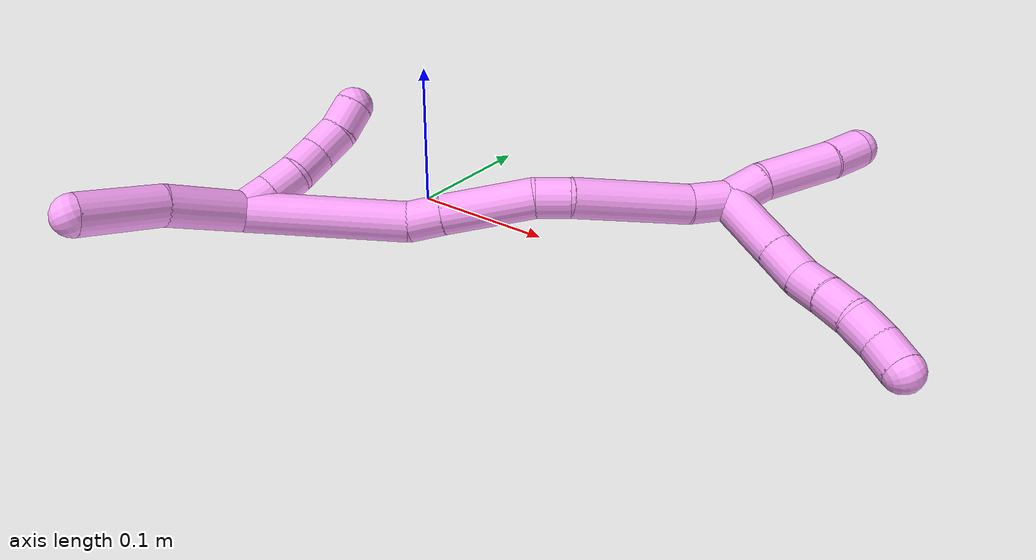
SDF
<sdf version="1.7">
 <world name="default">
  <model name="4">
   <static>0</static>
   <link name="4">
    <collision name="collision-cylinder-e_1_2_8">
     <pose>0.021505 0.007024 0.00274 -1.19882 1.23357 -0.902313</pose>
     <geometry><cylinder><radius>0.0125</radius><length>0.045577</length></cylinder></geometry>
     <surface>
      <friction><ode><mu>1.16</mu><mu2>1.16</mu2><slip1>0</slip1><slip2>0</slip2></ode></friction>
      <contact><ode><kp>1e+06</kp><kd>1</kd><max_vel>0</max_vel><min_depth>0.001</min_depth></ode></contact>
     </surface>
    </collision>
    <visual name="visual-cylinder-e_1_2_8">
     <pose>0.021505 0.007024 0.00274 -1.19882 1.23357 -0.902313</pose>
     <geometry><cylinder><radius>0.0125</radius><length>0.045577</length></cylinder></geometry>
     <material><ambient>1 0.65098 0.996078 1</ambient></material>
    </visual>
    <collision name="collision-cylinder-e_2_8_9">
     <pose>0.054211 0.017696 0.006855 -1.21059 1.23597 -0.914257</pose>
     <geometry><cylinder><radius>0.0125</radius><length>0.023719</length></cylinder></geometry>
     <surface>
      <friction><ode><mu>1.16</mu><mu2>1.16</mu2><slip1>0</slip1><slip2>0</slip2></ode></friction>
      <contact><ode><kp>1e+06</kp><kd>1</kd><max_vel>0</max_vel><min_depth>0.001</min_depth></ode></contact>
     </surface>
    </collision>
    <visual name="visual-cylinder-e_2_8_9">
     <pose>0.054211 0.017696 0.006855 -1.21059 1.23597 -0.914257</pose>
     <geometry><cylinder><radius>0.0125</radius><length>0.023719</length></cylinder></geometry>
     <material><ambient>1 0.65098 0.996078 1</ambient></material>
    </visual>
    <collision name="collision-cylinder-e_3_9_10">
     <pose>0.075515 0.021541 0.009992 -0.112004 1.39692 -0.094074</pose>
     <geometry><cylinder><radius>0.0125</radius><length>0.020515</length></cylinder></geometry>
     <surface>
      <friction><ode><mu>1.16</mu><mu2>1.16</mu2><slip1>0</slip1><slip2>0</slip2></ode></friction>
      <contact><ode><kp>1e+06</kp><kd>1</kd><max_vel>0</max_vel><min_depth>0.001</min_depth></ode></contact>
     </surface>
    </collision>
    <visual name="visual-cylinder-e_3_9_10">
     <pose>0.075515 0.021541 0.009992 -0.112004 1.39692 -0.094074</pose>
     <geometry><cylinder><radius>0.0125</radius><length>0.020515</length></cylinder></geometry>
     <material><ambient>1 0.65098 0.996078 1</ambient></material>
    </visual>
    <collision name="collision-cylinder-e_4_10_11">
     <pose>0.095473 0.022706 0.01345 -0.517905 1.37536 -0.42852</pose>
     <geometry><cylinder><radius>0.0125</radius><length>0.020093</length></cylinder></geometry>
     <surface>
      <friction><ode><mu>1.16</mu><mu2>1.16</mu2><slip1>0</slip1><slip2>0</slip2></ode></friction>
      <contact><ode><kp>1e+06</kp><kd>1</kd><max_vel>0</max_vel><min_depth>0.001</min_depth></ode></contact>
     </surface>
    </collision>
    <visual name="visual-cylinder-e_4_10_11">
     <pose>0.095473 0.022706 0.01345 -0.517905 1.37536 -0.42852</pose>
     <geometry><cylinder><radius>0.0125</radius><length>0.020093</length></cylinder></geometry>
     <material><ambient>1 0.65098 0.996078 1</ambient></material>
    </visual>
    <collision name="collision-cylinder-e_5_11_12">
     <pose>0.114685 0.026911 0.016685 -1.12727 1.20474 -0.81994</pose>
     <geometry><cylinder><radius>0.0125</radius><length>0.020042</length></cylinder></geometry>
     <surface>
      <friction><ode><mu>1.16</mu><mu2>1.16</mu2><slip1>0</slip1><slip2>0</slip2></ode></friction>
      <contact><ode><kp>1e+06</kp><kd>1</kd><max_vel>0</max_vel><min_depth>0.001</min_depth></ode></contact>
     </surface>
    </collision>
    <visual name="visual-cylinder-e_5_11_12">
     <pose>0.114685 0.026911 0.016685 -1.12727 1.20474 -0.81994</pose>
     <geometry><cylinder><radius>0.0125</radius><length>0.020042</length></cylinder></geometry>
     <material><ambient>1 0.65098 0.996078 1</ambient></material>
    </visual>
    <collision name="collision-cylinder-e_6_12_6">
     <pose>0.133929 0.031794 0.017915 -1.75641 1.40332 -1.58922</pose>
     <geometry><cylinder><radius>0.0125</radius><length>0.020054</length></cylinder></geometry>
     <surface>
      <friction><ode><mu>1.16</mu><mu2>1.16</mu2><slip1>0</slip1><slip2>0</slip2></ode></friction>
      <contact><ode><kp>1e+06</kp><kd>1</kd><max_vel>0</max_vel><min_depth>0.001</min_depth></ode></contact>
     </surface>
    </collision>
    <visual name="visual-cylinder-e_6_12_6">
     <pose>0.133929 0.031794 0.017915 -1.75641 1.40332 -1.58922</pose>
     <geometry><cylinder><radius>0.0125</radius><length>0.020054</length></cylinder></geometry>
     <material><ambient>1 0.65098 0.996078 1</ambient></material>
    </visual>
    <collision name="collision-cylinder-e_1_2_13">
     <pose>-0.001493 0.000189 0.012474 -0.015174 -0.119085 0.000905</pose>
     <geometry><cylinder><radius>0.0125</radius><length>0.025129</length></cylinder></geometry>
     <surface>
      <friction><ode><mu>1.16</mu><mu2>1.16</mu2><slip1>0</slip1><slip2>0</slip2></ode></friction>
      <contact><ode><kp>1e+06</kp><kd>1</kd><max_vel>0</max_vel><min_depth>0.001</min_depth></ode></contact>
     </surface>
    </collision>
    <visual name="visual-cylinder-e_1_2_13">
     <pose>-0.001493 0.000189 0.012474 -0.015174 -0.119085 0.000905</pose>
     <geometry><cylinder><radius>0.0125</radius><length>0.025129</length></cylinder></geometry>
     <material><ambient>1 0.65098 0.996078 1</ambient></material>
    </visual>
    <collision name="collision-cylinder-e_2_13_14">
     <pose>-0.004514 0.005402 0.049754 -0.199804 -0.060304 0.006046</pose>
     <geometry><cylinder><radius>0.0125</radius><length>0.050711</length></cylinder></geometry>
     <surface>
      <friction><ode><mu>1.16</mu><mu2>1.16</mu2><slip1>0</slip1><slip2>0</slip2></ode></friction>
      <contact><ode><kp>1e+06</kp><kd>1</kd><max_vel>0</max_vel><min_depth>0.001</min_depth></ode></contact>
     </surface>
    </collision>
    <visual name="visual-cylinder-e_2_13_14">
     <pose>-0.004514 0.005402 0.049754 -0.199804 -0.060304 0.006046</pose>
     <geometry><cylinder><radius>0.0125</radius><length>0.050711</length></cylinder></geometry>
     <material><ambient>1 0.65098 0.996078 1</ambient></material>
    </visual>
    <collision name="collision-cylinder-e_3_14_5">
     <pose>-0.008332 0.012782 0.086184 -0.200023 -0.190767 0.0192</pose>
     <geometry><cylinder><radius>0.0125</radius><length>0.02416</length></cylinder></geometry>
     <surface>
      <friction><ode><mu>1.16</mu><mu2>1.16</mu2><slip1>0</slip1><slip2>0</slip2></ode></friction>
      <contact><ode><kp>1e+06</kp><kd>1</kd><max_vel>0</max_vel><min_depth>0.001</min_depth></ode></contact>
     </surface>
    </collision>
    <visual name="visual-cylinder-e_3_14_5">
     <pose>-0.008332 0.012782 0.086184 -0.200023 -0.190767 0.0192</pose>
     <geometry><cylinder><radius>0.0125</radius><length>0.02416</length></cylinder></geometry>
     <material><ambient>1 0.65098 0.996078 1</ambient></material>
    </visual>
    <collision name="collision-cylinder-e_1_2_15">
     <pose>-0.001458 -0.003837 -0.012362 2.84061 -0.1122 -0.709363</pose>
     <geometry><cylinder><radius>0.0125</radius><length>0.026051</length></cylinder></geometry>
     <surface>
      <friction><ode><mu>1.16</mu><mu2>1.16</mu2><slip1>0</slip1><slip2>0</slip2></ode></friction>
      <contact><ode><kp>1e+06</kp><kd>1</kd><max_vel>0</max_vel><min_depth>0.001</min_depth></ode></contact>
     </surface>
    </collision>
    <visual name="visual-cylinder-e_1_2_15">
     <pose>-0.001458 -0.003837 -0.012362 2.84061 -0.1122 -0.709363</pose>
     <geometry><cylinder><radius>0.0125</radius><length>0.026051</length></cylinder></geometry>
     <material><ambient>1 0.65098 0.996078 1</ambient></material>
    </visual>
    <collision name="collision-cylinder-e_2_15_16">
     <pose>-0.009084 -0.023825 -0.058219 2.69232 -0.164344 -0.691884</pose>
     <geometry><cylinder><radius>0.0125</radius><length>0.075388</length></cylinder></geometry>
     <surface>
      <friction><ode><mu>1.16</mu><mu2>1.16</mu2><slip1>0</slip1><slip2>0</slip2></ode></friction>
      <contact><ode><kp>1e+06</kp><kd>1</kd><max_vel>0</max_vel><min_depth>0.001</min_depth></ode></contact>
     </surface>
    </collision>
    <visual name="visual-cylinder-e_2_15_16">
     <pose>-0.009084 -0.023825 -0.058219 2.69232 -0.164344 -0.691884</pose>
     <geometry><cylinder><radius>0.0125</radius><length>0.075388</length></cylinder></geometry>
     <material><ambient>1 0.65098 0.996078 1</ambient></material>
    </visual>
    <collision name="collision-cylinder-e_3_16_17">
     <pose>-0.018695 -0.042775 -0.101447 2.86144 -0.327894 -1.7299</pose>
     <geometry><cylinder><radius>0.0125</radius><length>0.021392</length></cylinder></geometry>
     <surface>
      <friction><ode><mu>1.16</mu><mu2>1.16</mu2><slip1>0</slip1><slip2>0</slip2></ode></friction>
      <contact><ode><kp>1e+06</kp><kd>1</kd><max_vel>0</max_vel><min_depth>0.001</min_depth></ode></contact>
     </surface>
    </collision>
    <visual name="visual-cylinder-e_3_16_17">
     <pose>-0.018695 -0.042775 -0.101447 2.86144 -0.327894 -1.7299</pose>
     <geometry><cylinder><radius>0.0125</radius><length>0.021392</length></cylinder></geometry>
     <material><ambient>1 0.65098 0.996078 1</ambient></material>
    </visual>
    <collision name="collision-cylinder-e_4_17_18">
     <pose>-0.030531 -0.047679 -0.138092 3.06359 -0.301357 -2.63849</pose>
     <geometry><cylinder><radius>0.0125</radius><length>0.05654</length></cylinder></geometry>
     <surface>
      <friction><ode><mu>1.16</mu><mu2>1.16</mu2><slip1>0</slip1><slip2>0</slip2></ode></friction>
      <contact><ode><kp>1e+06</kp><kd>1</kd><max_vel>0</max_vel><min_depth>0.001</min_depth></ode></contact>
     </surface>
    </collision>
    <visual name="visual-cylinder-e_4_17_18">
     <pose>-0.030531 -0.047679 -0.138092 3.06359 -0.301357 -2.63849</pose>
     <geometry><cylinder><radius>0.0125</radius><length>0.05654</length></cylinder></geometry>
     <material><ambient>1 0.65098 0.996078 1</ambient></material>
    </visual>
    <collision name="collision-cylinder-e_5_18_19">
     <pose>-0.041907 -0.050385 -0.175244 3.0828 -0.283267 -2.73486</pose>
     <geometry><cylinder><radius>0.0125</radius><length>0.021363</length></cylinder></geometry>
     <surface>
      <friction><ode><mu>1.16</mu><mu2>1.16</mu2><slip1>0</slip1><slip2>0</slip2></ode></friction>
      <contact><ode><kp>1e+06</kp><kd>1</kd><max_vel>0</max_vel><min_depth>0.001</min_depth></ode></contact>
     </surface>
    </collision>
    <visual name="visual-cylinder-e_5_18_19">
     <pose>-0.041907 -0.050385 -0.175244 3.0828 -0.283267 -2.73486</pose>
     <geometry><cylinder><radius>0.0125</radius><length>0.021363</length></cylinder></geometry>
     <material><ambient>1 0.65098 0.996078 1</ambient></material>
    </visual>
    <collision name="collision-cylinder-e_6_19_1">
     <pose>-0.060466 -0.068062 -0.229407 2.77085 -0.319168 -1.4186</pose>
     <geometry><cylinder><radius>0.0125</radius><length>0.099266</length></cylinder></geometry>
     <surface>
      <friction><ode><mu>1.16</mu><mu2>1.16</mu2><slip1>0</slip1><slip2>0</slip2></ode></friction>
      <contact><ode><kp>1e+06</kp><kd>1</kd><max_vel>0</max_vel><min_depth>0.001</min_depth></ode></contact>
     </surface>
    </collision>
    <visual name="visual-cylinder-e_6_19_1">
     <pose>-0.060466 -0.068062 -0.229407 2.77085 -0.319168 -1.4186</pose>
     <geometry><cylinder><radius>0.0125</radius><length>0.099266</length></cylinder></geometry>
     <material><ambient>1 0.65098 0.996078 1</ambient></material>
    </visual>
    <collision name="collision-cylinder-e_1_1_20">
     <pose>-0.070371 -0.100865 -0.291603 2.43084 0.230941 0.605802</pose>
     <geometry><cylinder><radius>0.0125</radius><length>0.049534</length></cylinder></geometry>
     <surface>
      <friction><ode><mu>1.16</mu><mu2>1.16</mu2><slip1>0</slip1><slip2>0</slip2></ode></friction>
      <contact><ode><kp>1e+06</kp><kd>1</kd><max_vel>0</max_vel><min_depth>0.001</min_depth></ode></contact>
     </surface>
    </collision>
    <visual name="visual-cylinder-e_1_1_20">
     <pose>-0.070371 -0.100865 -0.291603 2.43084 0.230941 0.605802</pose>
     <geometry><cylinder><radius>0.0125</radius><length>0.049534</length></cylinder></geometry>
     <material><ambient>1 0.65098 0.996078 1</ambient></material>
    </visual>
    <collision name="collision-cylinder-e_2_20_4">
     <pose>-0.056059 -0.129362 -0.329849 2.57284 0.349625 1.08705</pose>
     <geometry><cylinder><radius>0.0125</radius><length>0.050466</length></cylinder></geometry>
     <surface>
      <friction><ode><mu>1.16</mu><mu2>1.16</mu2><slip1>0</slip1><slip2>0</slip2></ode></friction>
      <contact><ode><kp>1e+06</kp><kd>1</kd><max_vel>0</max_vel><min_depth>0.001</min_depth></ode></contact>
     </surface>
    </collision>
    <visual name="visual-cylinder-e_2_20_4">
     <pose>-0.056059 -0.129362 -0.329849 2.57284 0.349625 1.08705</pose>
     <geometry><cylinder><radius>0.0125</radius><length>0.050466</length></cylinder></geometry>
     <material><ambient>1 0.65098 0.996078 1</ambient></material>
    </visual>
    <collision name="collision-cylinder-e_1_1_21">
     <pose>-0.080301 -0.08494 -0.264286 -0.021611 -0.440115 0.004834</pose>
     <geometry><cylinder><radius>0.0125</radius><length>0.02</length></cylinder></geometry>
     <surface>
      <friction><ode><mu>1.16</mu><mu2>1.16</mu2><slip1>0</slip1><slip2>0</slip2></ode></friction>
      <contact><ode><kp>1e+06</kp><kd>1</kd><max_vel>0</max_vel><min_depth>0.001</min_depth></ode></contact>
     </surface>
    </collision>
    <visual name="visual-cylinder-e_1_1_21">
     <pose>-0.080301 -0.08494 -0.264286 -0.021611 -0.440115 0.004834</pose>
     <geometry><cylinder><radius>0.0125</radius><length>0.02</length></cylinder></geometry>
     <material><ambient>1 0.65098 0.996078 1</ambient></material>
    </visual>
    <collision name="collision-cylinder-e_2_21_22">
     <pose>-0.08824 -0.085334 -0.245961 0.063407 -0.376717 -0.012091</pose>
     <geometry><cylinder><radius>0.0125</radius><length>0.02</length></cylinder></geometry>
     <surface>
      <friction><ode><mu>1.16</mu><mu2>1.16</mu2><slip1>0</slip1><slip2>0</slip2></ode></friction>
      <contact><ode><kp>1e+06</kp><kd>1</kd><max_vel>0</max_vel><min_depth>0.001</min_depth></ode></contact>
     </surface>
    </collision>
    <visual name="visual-cylinder-e_2_21_22">
     <pose>-0.08824 -0.085334 -0.245961 0.063407 -0.376717 -0.012091</pose>
     <geometry><cylinder><radius>0.0125</radius><length>0.02</length></cylinder></geometry>
     <material><ambient>1 0.65098 0.996078 1</ambient></material>
    </visual>
    <collision name="collision-cylinder-e_3_22_23">
     <pose>-0.097866 -0.086193 -0.228646 0.033538 -0.636916 -0.011058</pose>
     <geometry><cylinder><radius>0.0125</radius><length>0.02</length></cylinder></geometry>
     <surface>
      <friction><ode><mu>1.16</mu><mu2>1.16</mu2><slip1>0</slip1><slip2>0</slip2></ode></friction>
      <contact><ode><kp>1e+06</kp><kd>1</kd><max_vel>0</max_vel><min_depth>0.001</min_depth></ode></contact>
     </surface>
    </collision>
    <visual name="visual-cylinder-e_3_22_23">
     <pose>-0.097866 -0.086193 -0.228646 0.033538 -0.636916 -0.011058</pose>
     <geometry><cylinder><radius>0.0125</radius><length>0.02</length></cylinder></geometry>
     <material><ambient>1 0.65098 0.996078 1</ambient></material>
    </visual>
    <collision name="collision-cylinder-e_4_23_24">
     <pose>-0.107905 -0.088293 -0.211673 0.202062 -0.421619 -0.04338</pose>
     <geometry><cylinder><radius>0.0125</radius><length>0.02</length></cylinder></geometry>
     <surface>
      <friction><ode><mu>1.16</mu><mu2>1.16</mu2><slip1>0</slip1><slip2>0</slip2></ode></friction>
      <contact><ode><kp>1e+06</kp><kd>1</kd><max_vel>0</max_vel><min_depth>0.001</min_depth></ode></contact>
     </surface>
    </collision>
    <visual name="visual-cylinder-e_4_23_24">
     <pose>-0.107905 -0.088293 -0.211673 0.202062 -0.421619 -0.04338</pose>
     <geometry><cylinder><radius>0.0125</radius><length>0.02</length></cylinder></geometry>
     <material><ambient>1 0.65098 0.996078 1</ambient></material>
    </visual>
    <collision name="collision-cylinder-e_5_24_3">
     <pose>-0.117414 -0.093531 -0.195049 0.417199 -0.572415 -0.124428</pose>
     <geometry><cylinder><radius>0.0125</radius><length>0.02</length></cylinder></geometry>
     <surface>
      <friction><ode><mu>1.16</mu><mu2>1.16</mu2><slip1>0</slip1><slip2>0</slip2></ode></friction>
      <contact><ode><kp>1e+06</kp><kd>1</kd><max_vel>0</max_vel><min_depth>0.001</min_depth></ode></contact>
     </surface>
    </collision>
    <visual name="visual-cylinder-e_5_24_3">
     <pose>-0.117414 -0.093531 -0.195049 0.417199 -0.572415 -0.124428</pose>
     <geometry><cylinder><radius>0.0125</radius><length>0.02</length></cylinder></geometry>
     <material><ambient>1 0.65098 0.996078 1</ambient></material>
    </visual>
    <collision name="collision-sphere-3">
     <pose>-0.122831 -0.096937 -0.187364 0 -0 0</pose>
     <geometry><sphere><radius>0.0125</radius></sphere></geometry>
     <surface>
      <friction><ode><mu>1.16</mu><mu2>1.16</mu2><slip1>0</slip1><slip2>0</slip2></ode></friction>
      <contact><ode><kp>1e+06</kp><kd>1</kd><max_vel>0</max_vel><min_depth>0.001</min_depth></ode></contact>
     </surface>
    </collision>
    <visual name="visual-sphere-3">
     <pose>-0.122831 -0.096937 -0.187364 0 -0 0</pose>
     <geometry><sphere><radius>0.0125</radius></sphere></geometry>
     <material><ambient>1 0.65098 0.996078 1</ambient></material>
    </visual>
    <collision name="collision-sphere-24">
     <pose>-0.111997 -0.090125 -0.202734 0 -0 0</pose>
     <geometry><sphere><radius>0.0125</radius></sphere></geometry>
     <surface>
      <friction><ode><mu>1.16</mu><mu2>1.16</mu2><slip1>0</slip1><slip2>0</slip2></ode></friction>
      <contact><ode><kp>1e+06</kp><kd>1</kd><max_vel>0</max_vel><min_depth>0.001</min_depth></ode></contact>
     </surface>
    </collision>
    <visual name="visual-sphere-24">
     <pose>-0.111997 -0.090125 -0.202734 0 -0 0</pose>
     <geometry><sphere><radius>0.0125</radius></sphere></geometry>
     <material><ambient>1 0.65098 0.996078 1</ambient></material>
    </visual>
    <collision name="collision-sphere-23">
     <pose>-0.103813 -0.086462 -0.220611 0 -0 0</pose>
     <geometry><sphere><radius>0.0125</radius></sphere></geometry>
     <surface>
      <friction><ode><mu>1.16</mu><mu2>1.16</mu2><slip1>0</slip1><slip2>0</slip2></ode></friction>
      <contact><ode><kp>1e+06</kp><kd>1</kd><max_vel>0</max_vel><min_depth>0.001</min_depth></ode></contact>
     </surface>
    </collision>
    <visual name="visual-sphere-23">
     <pose>-0.103813 -0.086462 -0.220611 0 -0 0</pose>
     <geometry><sphere><radius>0.0125</radius></sphere></geometry>
     <material><ambient>1 0.65098 0.996078 1</ambient></material>
    </visual>
    <collision name="collision-sphere-22">
     <pose>-0.091918 -0.085923 -0.236681 0 -0 0</pose>
     <geometry><sphere><radius>0.0125</radius></sphere></geometry>
     <surface>
      <friction><ode><mu>1.16</mu><mu2>1.16</mu2><slip1>0</slip1><slip2>0</slip2></ode></friction>
      <contact><ode><kp>1e+06</kp><kd>1</kd><max_vel>0</max_vel><min_depth>0.001</min_depth></ode></contact>
     </surface>
    </collision>
    <visual name="visual-sphere-22">
     <pose>-0.091918 -0.085923 -0.236681 0 -0 0</pose>
     <geometry><sphere><radius>0.0125</radius></sphere></geometry>
     <material><ambient>1 0.65098 0.996078 1</ambient></material>
    </visual>
    <collision name="collision-sphere-21">
     <pose>-0.084561 -0.084745 -0.255241 0 -0 0</pose>
     <geometry><sphere><radius>0.0125</radius></sphere></geometry>
     <surface>
      <friction><ode><mu>1.16</mu><mu2>1.16</mu2><slip1>0</slip1><slip2>0</slip2></ode></friction>
      <contact><ode><kp>1e+06</kp><kd>1</kd><max_vel>0</max_vel><min_depth>0.001</min_depth></ode></contact>
     </surface>
    </collision>
    <visual name="visual-sphere-21">
     <pose>-0.084561 -0.084745 -0.255241 0 -0 0</pose>
     <geometry><sphere><radius>0.0125</radius></sphere></geometry>
     <material><ambient>1 0.65098 0.996078 1</ambient></material>
    </visual>
    <collision name="collision-sphere-4">
     <pose>-0.047415 -0.14213 -0.349824 0 -0 0</pose>
     <geometry><sphere><radius>0.0125</radius></sphere></geometry>
     <surface>
      <friction><ode><mu>1.16</mu><mu2>1.16</mu2><slip1>0</slip1><slip2>0</slip2></ode></friction>
      <contact><ode><kp>1e+06</kp><kd>1</kd><max_vel>0</max_vel><min_depth>0.001</min_depth></ode></contact>
     </surface>
    </collision>
    <visual name="visual-sphere-4">
     <pose>-0.047415 -0.14213 -0.349824 0 -0 0</pose>
     <geometry><sphere><radius>0.0125</radius></sphere></geometry>
     <material><ambient>1 0.65098 0.996078 1</ambient></material>
    </visual>
    <collision name="collision-sphere-20">
     <pose>-0.064702 -0.116594 -0.309875 0 -0 0</pose>
     <geometry><sphere><radius>0.0125</radius></sphere></geometry>
     <surface>
      <friction><ode><mu>1.16</mu><mu2>1.16</mu2><slip1>0</slip1><slip2>0</slip2></ode></friction>
      <contact><ode><kp>1e+06</kp><kd>1</kd><max_vel>0</max_vel><min_depth>0.001</min_depth></ode></contact>
     </surface>
    </collision>
    <visual name="visual-sphere-20">
     <pose>-0.064702 -0.116594 -0.309875 0 -0 0</pose>
     <geometry><sphere><radius>0.0125</radius></sphere></geometry>
     <material><ambient>1 0.65098 0.996078 1</ambient></material>
    </visual>
    <collision name="collision-sphere-12">
     <pose>0.124042 0.030151 0.018224 0 -0 0</pose>
     <geometry><sphere><radius>0.0125</radius></sphere></geometry>
     <surface>
      <friction><ode><mu>1.16</mu><mu2>1.16</mu2><slip1>0</slip1><slip2>0</slip2></ode></friction>
      <contact><ode><kp>1e+06</kp><kd>1</kd><max_vel>0</max_vel><min_depth>0.001</min_depth></ode></contact>
     </surface>
    </collision>
    <visual name="visual-sphere-12">
     <pose>0.124042 0.030151 0.018224 0 -0 0</pose>
     <geometry><sphere><radius>0.0125</radius></sphere></geometry>
     <material><ambient>1 0.65098 0.996078 1</ambient></material>
    </visual>
    <collision name="collision-sphere-11">
     <pose>0.105328 0.023671 0.015145 0 -0 0</pose>
     <geometry><sphere><radius>0.0125</radius></sphere></geometry>
     <surface>
      <friction><ode><mu>1.16</mu><mu2>1.16</mu2><slip1>0</slip1><slip2>0</slip2></ode></friction>
      <contact><ode><kp>1e+06</kp><kd>1</kd><max_vel>0</max_vel><min_depth>0.001</min_depth></ode></contact>
     </surface>
    </collision>
    <visual name="visual-sphere-11">
     <pose>0.105328 0.023671 0.015145 0 -0 0</pose>
     <geometry><sphere><radius>0.0125</radius></sphere></geometry>
     <material><ambient>1 0.65098 0.996078 1</ambient></material>
    </visual>
    <collision name="collision-sphere-10">
     <pose>0.085618 0.02174 0.011755 0 -0 0</pose>
     <geometry><sphere><radius>0.0125</radius></sphere></geometry>
     <surface>
      <friction><ode><mu>1.16</mu><mu2>1.16</mu2><slip1>0</slip1><slip2>0</slip2></ode></friction>
      <contact><ode><kp>1e+06</kp><kd>1</kd><max_vel>0</max_vel><min_depth>0.001</min_depth></ode></contact>
     </surface>
    </collision>
    <visual name="visual-sphere-10">
     <pose>0.085618 0.02174 0.011755 0 -0 0</pose>
     <geometry><sphere><radius>0.0125</radius></sphere></geometry>
     <material><ambient>1 0.65098 0.996078 1</ambient></material>
    </visual>
    <collision name="collision-sphere-9">
     <pose>0.065412 0.021343 0.008228 0 -0 0</pose>
     <geometry><sphere><radius>0.0125</radius></sphere></geometry>
     <surface>
      <friction><ode><mu>1.16</mu><mu2>1.16</mu2><slip1>0</slip1><slip2>0</slip2></ode></friction>
      <contact><ode><kp>1e+06</kp><kd>1</kd><max_vel>0</max_vel><min_depth>0.001</min_depth></ode></contact>
     </surface>
    </collision>
    <visual name="visual-sphere-9">
     <pose>0.065412 0.021343 0.008228 0 -0 0</pose>
     <geometry><sphere><radius>0.0125</radius></sphere></geometry>
     <material><ambient>1 0.65098 0.996078 1</ambient></material>
    </visual>
    <collision name="collision-sphere-2">
     <geometry><sphere><radius>0.0125</radius></sphere></geometry>
     <surface>
      <friction><ode><mu>1.16</mu><mu2>1.16</mu2><slip1>0</slip1><slip2>0</slip2></ode></friction>
      <contact><ode><kp>1e+06</kp><kd>1</kd><max_vel>0</max_vel><min_depth>0.001</min_depth></ode></contact>
     </surface>
    </collision>
    <visual name="visual-sphere-2">
     <geometry><sphere><radius>0.0125</radius></sphere></geometry>
     <material><ambient>1 0.65098 0.996078 1</ambient></material>
    </visual>
    <collision name="collision-sphere-19">
     <pose>-0.044893 -0.050988 -0.185482 0 -0 0</pose>
     <geometry><sphere><radius>0.0125</radius></sphere></geometry>
     <surface>
      <friction><ode><mu>1.16</mu><mu2>1.16</mu2><slip1>0</slip1><slip2>0</slip2></ode></friction>
      <contact><ode><kp>1e+06</kp><kd>1</kd><max_vel>0</max_vel><min_depth>0.001</min_depth></ode></contact>
     </surface>
    </collision>
    <visual name="visual-sphere-19">
     <pose>-0.044893 -0.050988 -0.185482 0 -0 0</pose>
     <geometry><sphere><radius>0.0125</radius></sphere></geometry>
     <material><ambient>1 0.65098 0.996078 1</ambient></material>
    </visual>
    <collision name="collision-sphere-8">
     <pose>0.04301 0.014049 0.005481 0 -0 0</pose>
     <geometry><sphere><radius>0.0125</radius></sphere></geometry>
     <surface>
      <friction><ode><mu>1.16</mu><mu2>1.16</mu2><slip1>0</slip1><slip2>0</slip2></ode></friction>
      <contact><ode><kp>1e+06</kp><kd>1</kd><max_vel>0</max_vel><min_depth>0.001</min_depth></ode></contact>
     </surface>
    </collision>
    <visual name="visual-sphere-8">
     <pose>0.04301 0.014049 0.005481 0 -0 0</pose>
     <geometry><sphere><radius>0.0125</radius></sphere></geometry>
     <material><ambient>1 0.65098 0.996078 1</ambient></material>
    </visual>
    <collision name="collision-sphere-6">
     <pose>0.143815 0.033436 0.017607 0 -0 0</pose>
     <geometry><sphere><radius>0.0125</radius></sphere></geometry>
     <surface>
      <friction><ode><mu>1.16</mu><mu2>1.16</mu2><slip1>0</slip1><slip2>0</slip2></ode></friction>
      <contact><ode><kp>1e+06</kp><kd>1</kd><max_vel>0</max_vel><min_depth>0.001</min_depth></ode></contact>
     </surface>
    </collision>
    <visual name="visual-sphere-6">
     <pose>0.143815 0.033436 0.017607 0 -0 0</pose>
     <geometry><sphere><radius>0.0125</radius></sphere></geometry>
     <material><ambient>1 0.65098 0.996078 1</ambient></material>
    </visual>
    <collision name="collision-sphere-13">
     <pose>-0.002985 0.000379 0.024948 0 -0 0</pose>
     <geometry><sphere><radius>0.0125</radius></sphere></geometry>
     <surface>
      <friction><ode><mu>1.16</mu><mu2>1.16</mu2><slip1>0</slip1><slip2>0</slip2></ode></friction>
      <contact><ode><kp>1e+06</kp><kd>1</kd><max_vel>0</max_vel><min_depth>0.001</min_depth></ode></contact>
     </surface>
    </collision>
    <visual name="visual-sphere-13">
     <pose>-0.002985 0.000379 0.024948 0 -0 0</pose>
     <geometry><sphere><radius>0.0125</radius></sphere></geometry>
     <material><ambient>1 0.65098 0.996078 1</ambient></material>
    </visual>
    <collision name="collision-sphere-14">
     <pose>-0.006042 0.010425 0.07456 0 -0 0</pose>
     <geometry><sphere><radius>0.0125</radius></sphere></geometry>
     <surface>
      <friction><ode><mu>1.16</mu><mu2>1.16</mu2><slip1>0</slip1><slip2>0</slip2></ode></friction>
      <contact><ode><kp>1e+06</kp><kd>1</kd><max_vel>0</max_vel><min_depth>0.001</min_depth></ode></contact>
     </surface>
    </collision>
    <visual name="visual-sphere-14">
     <pose>-0.006042 0.010425 0.07456 0 -0 0</pose>
     <geometry><sphere><radius>0.0125</radius></sphere></geometry>
     <material><ambient>1 0.65098 0.996078 1</ambient></material>
    </visual>
    <collision name="collision-sphere-5">
     <pose>-0.010623 0.015139 0.097809 0 -0 0</pose>
     <geometry><sphere><radius>0.0125</radius></sphere></geometry>
     <surface>
      <friction><ode><mu>1.16</mu><mu2>1.16</mu2><slip1>0</slip1><slip2>0</slip2></ode></friction>
      <contact><ode><kp>1e+06</kp><kd>1</kd><max_vel>0</max_vel><min_depth>0.001</min_depth></ode></contact>
     </surface>
    </collision>
    <visual name="visual-sphere-5">
     <pose>-0.010623 0.015139 0.097809 0 -0 0</pose>
     <geometry><sphere><radius>0.0125</radius></sphere></geometry>
     <material><ambient>1 0.65098 0.996078 1</ambient></material>
    </visual>
    <collision name="collision-sphere-15">
     <pose>-0.002917 -0.007675 -0.024723 0 -0 0</pose>
     <geometry><sphere><radius>0.0125</radius></sphere></geometry>
     <surface>
      <friction><ode><mu>1.16</mu><mu2>1.16</mu2><slip1>0</slip1><slip2>0</slip2></ode></friction>
      <contact><ode><kp>1e+06</kp><kd>1</kd><max_vel>0</max_vel><min_depth>0.001</min_depth></ode></contact>
     </surface>
    </collision>
    <visual name="visual-sphere-15">
     <pose>-0.002917 -0.007675 -0.024723 0 -0 0</pose>
     <geometry><sphere><radius>0.0125</radius></sphere></geometry>
     <material><ambient>1 0.65098 0.996078 1</ambient></material>
    </visual>
    <collision name="collision-sphere-16">
     <pose>-0.015251 -0.039975 -0.091715 0 -0 0</pose>
     <geometry><sphere><radius>0.0125</radius></sphere></geometry>
     <surface>
      <friction><ode><mu>1.16</mu><mu2>1.16</mu2><slip1>0</slip1><slip2>0</slip2></ode></friction>
      <contact><ode><kp>1e+06</kp><kd>1</kd><max_vel>0</max_vel><min_depth>0.001</min_depth></ode></contact>
     </surface>
    </collision>
    <visual name="visual-sphere-16">
     <pose>-0.015251 -0.039975 -0.091715 0 -0 0</pose>
     <geometry><sphere><radius>0.0125</radius></sphere></geometry>
     <material><ambient>1 0.65098 0.996078 1</ambient></material>
    </visual>
    <collision name="collision-sphere-17">
     <pose>-0.02214 -0.045575 -0.111178 0 -0 0</pose>
     <geometry><sphere><radius>0.0125</radius></sphere></geometry>
     <surface>
      <friction><ode><mu>1.16</mu><mu2>1.16</mu2><slip1>0</slip1><slip2>0</slip2></ode></friction>
      <contact><ode><kp>1e+06</kp><kd>1</kd><max_vel>0</max_vel><min_depth>0.001</min_depth></ode></contact>
     </surface>
    </collision>
    <visual name="visual-sphere-17">
     <pose>-0.02214 -0.045575 -0.111178 0 -0 0</pose>
     <geometry><sphere><radius>0.0125</radius></sphere></geometry>
     <material><ambient>1 0.65098 0.996078 1</ambient></material>
    </visual>
    <collision name="collision-sphere-18">
     <pose>-0.038922 -0.049782 -0.165006 0 -0 0</pose>
     <geometry><sphere><radius>0.0125</radius></sphere></geometry>
     <surface>
      <friction><ode><mu>1.16</mu><mu2>1.16</mu2><slip1>0</slip1><slip2>0</slip2></ode></friction>
      <contact><ode><kp>1e+06</kp><kd>1</kd><max_vel>0</max_vel><min_depth>0.001</min_depth></ode></contact>
     </surface>
    </collision>
    <visual name="visual-sphere-18">
     <pose>-0.038922 -0.049782 -0.165006 0 -0 0</pose>
     <geometry><sphere><radius>0.0125</radius></sphere></geometry>
     <material><ambient>1 0.65098 0.996078 1</ambient></material>
    </visual>
    <collision name="collision-sphere-1">
     <pose>-0.07604 -0.085136 -0.273331 0 -0 0</pose>
     <geometry><sphere><radius>0.0125</radius></sphere></geometry>
     <surface>
      <friction><ode><mu>1.16</mu><mu2>1.16</mu2><slip1>0</slip1><slip2>0</slip2></ode></friction>
      <contact><ode><kp>1e+06</kp><kd>1</kd><max_vel>0</max_vel><min_depth>0.001</min_depth></ode></contact>
     </surface>
    </collision>
    <visual name="visual-sphere-1">
     <pose>-0.07604 -0.085136 -0.273331 0 -0 0</pose>
     <geometry><sphere><radius>0.0125</radius></sphere></geometry>
     <material><ambient>1 0.65098 0.996078 1</ambient></material>
    </visual>
    <inertial>
     <pose>-0.020861 -0.040303 -0.118443 0 -0 0</pose>
     <mass>0.75</mass>
     <inertia><ixx>-3e-05</ixx><ixy>0</ixy><ixz>0</ixz><iyy>-9.2e-05</iyy><iyz>0</iyz><izz>6.5e-05</izz></inertia>
    </inertial>
   </link>
   <pose>0.22011 0.030485 0.051458 -1.24847 0.093459 -0.603263</pose>
  </model>
 </world>
</sdf>
